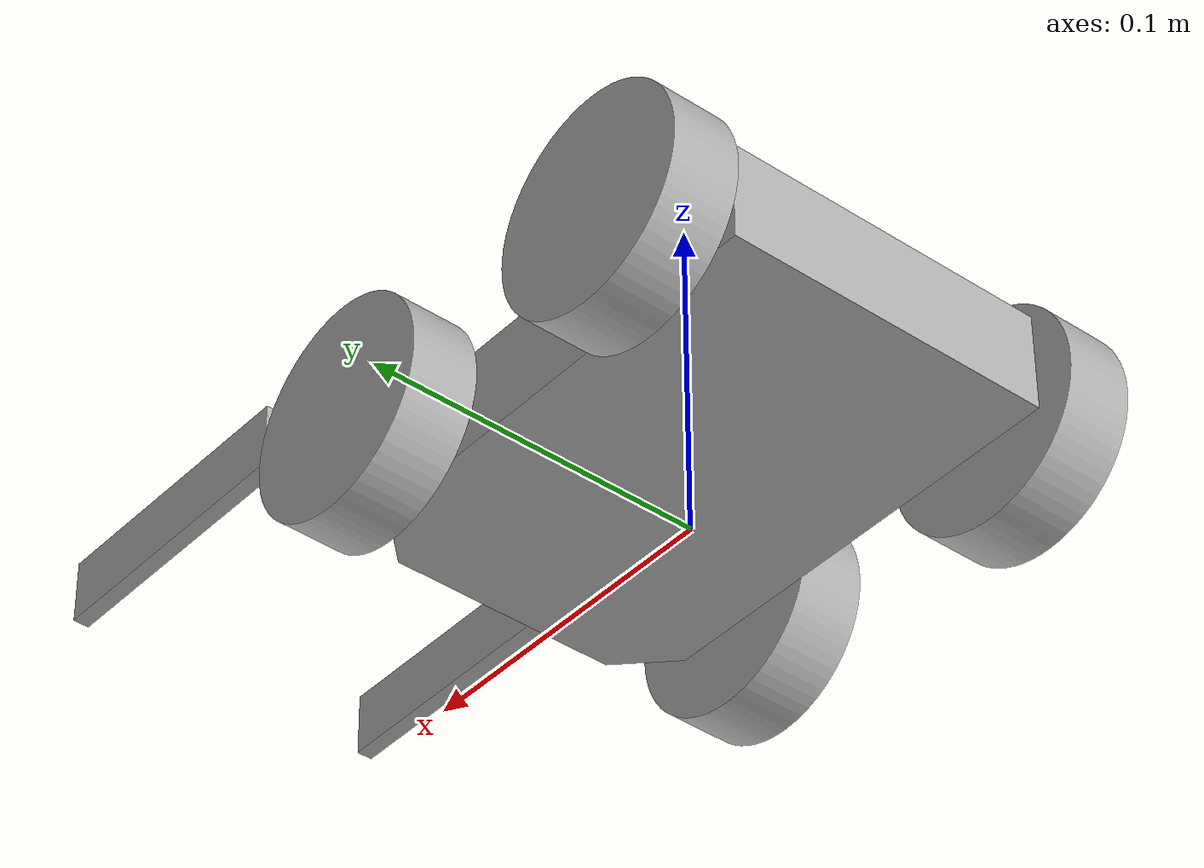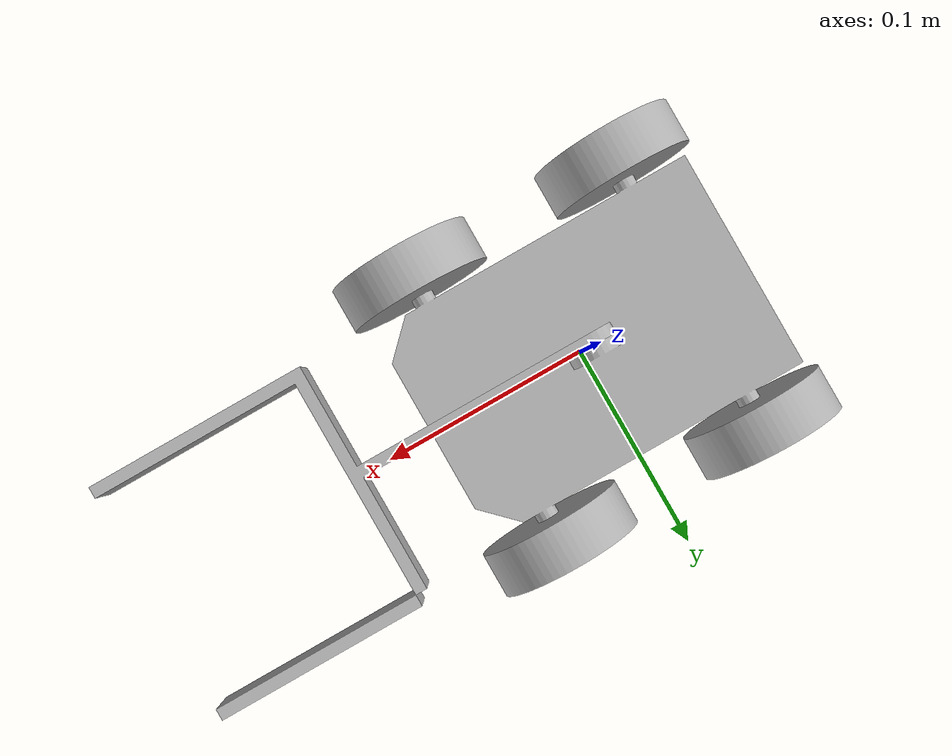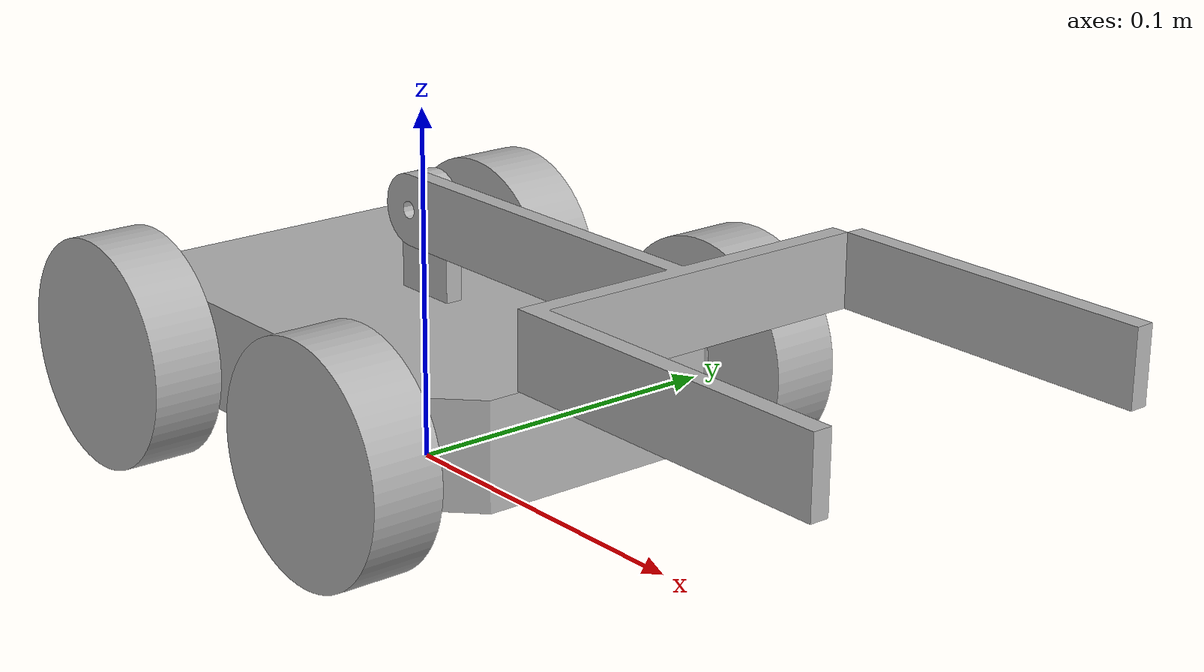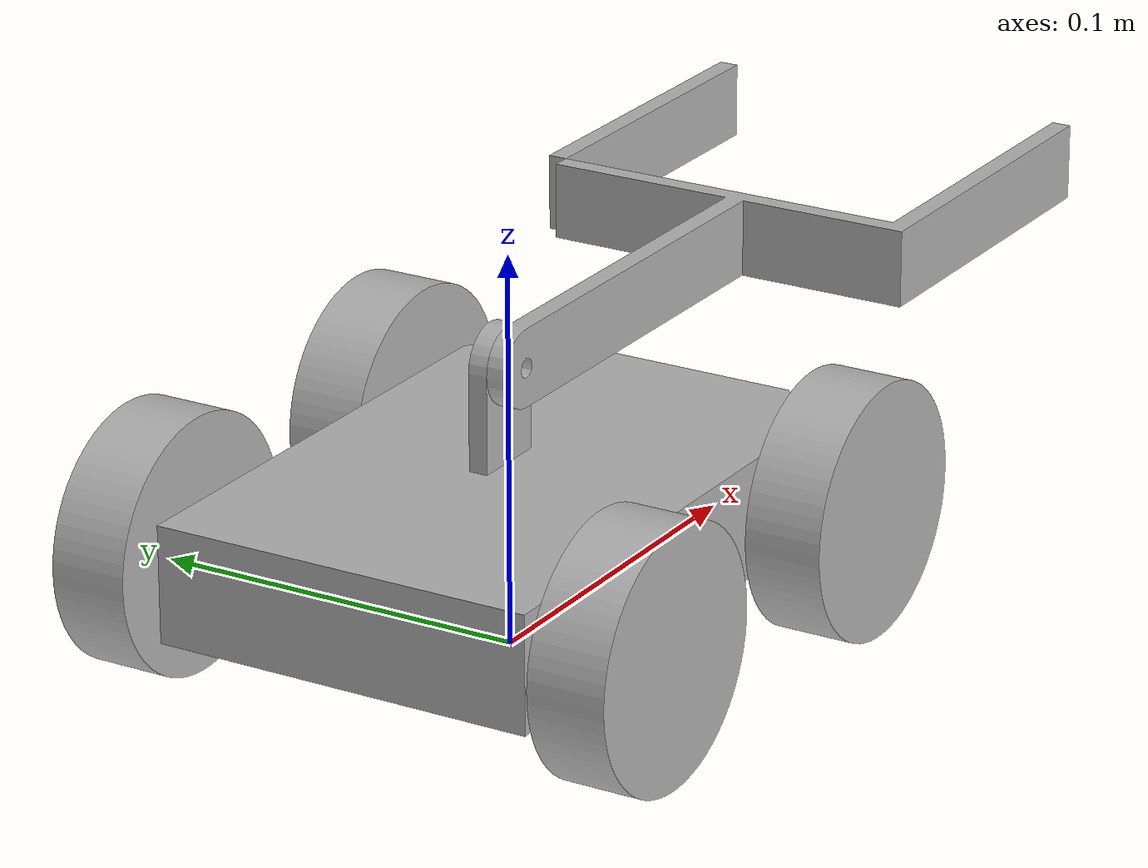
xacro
<?xml version="1.0" ?>
<robot name="demo_model" xmlns:xacro="http://www.ros.org/wiki/xacro">

<xacro:include filename="$(find demo_model_description)/urdf/materials.xacro" />
<xacro:include filename="$(find demo_model_description)/urdf/demo_model.trans" />
<xacro:include filename="$(find demo_model_description)/urdf/demo_model.gazebo" />

<link name="base_link">
  <inertial>
    <origin rpy="0 0 0" xyz="-0.001054668620211629 1.7785526445292643e-05 0.032722255550502254"/>
    <mass value="0.2437163627275536"/>
    <inertia ixx="0.000219" ixy="-0.0" ixz="-0.0" iyy="0.000463" iyz="-0.0" izz="0.000642"/>
  </inertial>
  <visual>
    <origin rpy="0 0 0" xyz="0 0 0"/>
    <geometry>
      <mesh filename="package://demo_model_description/meshes/base_link.stl" scale="0.001 0.001 0.001"/>
    </geometry>
    <material name="silver"/>
  </visual>
  <collision>
    <origin rpy="0 0 0" xyz="0 0 0"/>
    <geometry>
      <mesh filename="package://demo_model_description/meshes/base_link.stl" scale="0.001 0.001 0.001"/>
    </geometry>
  </collision>
</link>

<link name="wheel_rf_1">
  <inertial>
    <origin rpy="0 0 0" xyz="-1.3877787807814457e-17 -0.010000000000000002 0.0"/>
    <mass value="0.061720514670588485"/>
    <inertia ixx="1.8e-05" ixy="0.0" ixz="0.0" iyy="3.3e-05" iyz="0.0" izz="1.8e-05"/>
  </inertial>
  <visual>
    <origin rpy="0 0 0" xyz="-0.05 0.055 -0.0325"/>
    <geometry>
      <mesh filename="package://demo_model_description/meshes/wheel_rf_1.stl" scale="0.001 0.001 0.001"/>
    </geometry>
    <material name="silver"/>
  </visual>
  <collision>
    <origin rpy="0 0 0" xyz="-0.05 0.055 -0.0325"/>
    <geometry>
      <mesh filename="package://demo_model_description/meshes/wheel_rf_1.stl" scale="0.001 0.001 0.001"/>
    </geometry>
  </collision>
</link>

<link name="wheel_rb_1">
  <inertial>
    <origin rpy="0 0 0" xyz="0.0 -0.010000000000000002 0.0"/>
    <mass value="0.061720514670588485"/>
    <inertia ixx="1.8e-05" ixy="-0.0" ixz="-0.0" iyy="3.3e-05" iyz="0.0" izz="1.8e-05"/>
  </inertial>
  <visual>
    <origin rpy="0 0 0" xyz="0.05 0.055 -0.0325"/>
    <geometry>
      <mesh filename="package://demo_model_description/meshes/wheel_rb_1.stl" scale="0.001 0.001 0.001"/>
    </geometry>
    <material name="silver"/>
  </visual>
  <collision>
    <origin rpy="0 0 0" xyz="0.05 0.055 -0.0325"/>
    <geometry>
      <mesh filename="package://demo_model_description/meshes/wheel_rb_1.stl" scale="0.001 0.001 0.001"/>
    </geometry>
  </collision>
</link>

<link name="wheel_lb_1">
  <inertial>
    <origin rpy="0 0 0" xyz="0.0 0.010000000000000002 0.0"/>
    <mass value="0.061720514670588485"/>
    <inertia ixx="1.8e-05" ixy="0.0" ixz="-0.0" iyy="3.3e-05" iyz="0.0" izz="1.8e-05"/>
  </inertial>
  <visual>
    <origin rpy="0 0 0" xyz="0.05 -0.055 -0.0325"/>
    <geometry>
      <mesh filename="package://demo_model_description/meshes/wheel_lb_1.stl" scale="0.001 0.001 0.001"/>
    </geometry>
    <material name="silver"/>
  </visual>
  <collision>
    <origin rpy="0 0 0" xyz="0.05 -0.055 -0.0325"/>
    <geometry>
      <mesh filename="package://demo_model_description/meshes/wheel_lb_1.stl" scale="0.001 0.001 0.001"/>
    </geometry>
  </collision>
</link>

<link name="wheel_lf_1">
  <inertial>
    <origin rpy="0 0 0" xyz="-1.3877787807814457e-17 0.010000000000000002 0.0"/>
    <mass value="0.061720514670588485"/>
    <inertia ixx="1.8e-05" ixy="0.0" ixz="0.0" iyy="3.3e-05" iyz="0.0" izz="1.8e-05"/>
  </inertial>
  <visual>
    <origin rpy="0 0 0" xyz="-0.05 -0.055 -0.0325"/>
    <geometry>
      <mesh filename="package://demo_model_description/meshes/wheel_lf_1.stl" scale="0.001 0.001 0.001"/>
    </geometry>
    <material name="silver"/>
  </visual>
  <collision>
    <origin rpy="0 0 0" xyz="-0.05 -0.055 -0.0325"/>
    <geometry>
      <mesh filename="package://demo_model_description/meshes/wheel_lf_1.stl" scale="0.001 0.001 0.001"/>
    </geometry>
  </collision>
</link>

<link name="arm_1">
  <inertial>
    <origin rpy="0 0 0" xyz="0.09997331080702355 -0.015088107062819853 1.3877787807814457e-17"/>
    <mass value="0.03199845679655116"/>
    <inertia ixx="2.4e-05" ixy="2.3e-05" ixz="-0.0" iyy="8e-05" iyz="-0.0" izz="0.000102"/>
  </inertial>
  <visual>
    <origin rpy="0 0 0" xyz="-0.0 -0.0 -0.0725"/>
    <geometry>
      <mesh filename="package://demo_model_description/meshes/arm_1.stl" scale="0.001 0.001 0.001"/>
    </geometry>
    <material name="silver"/>
  </visual>
  <collision>
    <origin rpy="0 0 0" xyz="-0.0 -0.0 -0.0725"/>
    <geometry>
      <mesh filename="package://demo_model_description/meshes/arm_1.stl" scale="0.001 0.001 0.001"/>
    </geometry>
  </collision>
</link>

<link name="gripper_1">
  <inertial>
    <origin rpy="0 0 0" xyz="0.04499999999999997 0.002500000000000009 -0.009999999999999995"/>
    <mass value="0.009540000000000017"/>
    <inertia ixx="0.0" ixy="0.0" ixz="-0.0" iyy="7e-06" iyz="0.0" izz="6e-06"/>
  </inertial>
  <visual>
    <origin rpy="0 0 0" xyz="-0.11 -0.05 -0.0825"/>
    <geometry>
      <mesh filename="package://demo_model_description/meshes/gripper_1.stl" scale="0.001 0.001 0.001"/>
    </geometry>
    <material name="silver"/>
  </visual>
  <collision>
    <origin rpy="0 0 0" xyz="-0.11 -0.05 -0.0825"/>
    <geometry>
      <mesh filename="package://demo_model_description/meshes/gripper_1.stl" scale="0.001 0.001 0.001"/>
    </geometry>
  </collision>
</link>

<joint name="motor_rf" type="continuous">
  <origin rpy="0 0 0" xyz="0.05 -0.055 0.0325"/>
  <parent link="base_link"/>
  <child link="wheel_rf_1"/>
  <axis xyz="0.0 1.0 0.0"/>
</joint>

<joint name="motor_rb" type="continuous">
  <origin rpy="0 0 0" xyz="-0.05 -0.055 0.0325"/>
  <parent link="base_link"/>
  <child link="wheel_rb_1"/>
  <axis xyz="0.0 1.0 0.0"/>
</joint>

<joint name="motor_lb" type="continuous">
  <origin rpy="0 0 0" xyz="-0.05 0.055 0.0325"/>
  <parent link="base_link"/>
  <child link="wheel_lb_1"/>
  <axis xyz="0.0 1.0 0.0"/>
</joint>

<joint name="motor_lf" type="continuous">
  <origin rpy="0 0 0" xyz="0.05 0.055 0.0325"/>
  <parent link="base_link"/>
  <child link="wheel_lf_1"/>
  <axis xyz="0.0 1.0 0.0"/>
</joint>

<joint name="arm_joint" type="revolute">
  <origin rpy="0 0 0" xyz="0.0 0.0 0.0725"/>
  <parent link="base_link"/>
  <child link="arm_1"/>
  <axis xyz="0.0 -1.0 0.0"/>
  <limit effort="100" lower="-0.174533" upper="1.919862" velocity="100"/>
</joint>

<joint name="gripper_joint" type="revolute">
  <origin rpy="0 0 0" xyz="0.11 0.05 0.01"/>
  <parent link="arm_1"/>
  <child link="gripper_1"/>
  <axis xyz="-0.0 0.0 1.0"/>
  <limit effort="100" lower="-1.570796" upper="1.570796" velocity="100"/>
</joint>

</robot>

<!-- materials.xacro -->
<robot name="demo_model" xmlns:xacro="http://www.ros.org/wiki/xacro" >

<material name="silver">
  <color rgba="0.700 0.700 0.700 1.000"/>
</material>

</robot>

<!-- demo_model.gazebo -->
<robot name="demo_model" xmlns:xacro="http://www.ros.org/wiki/xacro" >

<xacro:property name="body_color" value="Gazebo/Orange" />
<xacro:property name="wheel_color" value="Gazebo/Black" />
<xacro:property name="arm_color" value="Gazebo/Blue" />

<gazebo>
  <plugin filename="libgazebo_ros_control.so" name="gazebo_ros_control">
    <robotNamespace>/demo_model</robotNamespace>
    <robotSimType>gazebo_ros_control/DefaultRobotHWSim</robotSimType>
    <legacyModeNS>true</legacyModeNS>
  </plugin>
</gazebo>

<gazebo reference="base_link">
  <material>${body_color}</material>
  <mu1>0.2</mu1>
  <mu2>0.2</mu2>
  <selfCollide>true</selfCollide>
  <gravity>true</gravity>
</gazebo>

<gazebo reference="wheel_rf_1">
  <material>${wheel_color}</material>
  <mu1>10.0</mu1>
  <mu2>10.0</mu2>
  <selfCollide>true</selfCollide>
</gazebo>

<gazebo reference="wheel_rb_1">
  <material>${wheel_color}</material>
  <mu1>10.0</mu1>
  <mu2>10.0</mu2>
  <selfCollide>true</selfCollide>
</gazebo>

<gazebo reference="wheel_lb_1">
  <material>${wheel_color}</material>
  <mu1>10.0</mu1>
  <mu2>10.0</mu2>
  <selfCollide>true</selfCollide>
</gazebo>

<gazebo reference="wheel_lf_1">
  <material>${wheel_color}</material>
  <mu1>10.0</mu1>
  <mu2>10.0</mu2>
  <selfCollide>true</selfCollide>
</gazebo>

<gazebo reference="arm_1">
  <material>${arm_color}</material>
  <mu1>100.0</mu1>
  <mu2>100.0</mu2>
  <selfCollide>true</selfCollide>
</gazebo>

<gazebo reference="gripper_1">
  <material>${arm_color}</material>
  <mu1>100.0</mu1>
  <mu2>100.0</mu2>
  <selfCollide>true</selfCollide>
</gazebo>

<gazebo>
  <plugin name="skid_steer_drive_controller" filename="libgazebo_ros_skid_steer_drive.so">
    <updateRate>100.0</updateRate>
    <robotNamespace>/</robotNamespace>
    <leftFrontJoint>motor_lf</leftFrontJoint>
    <rightFrontJoint>motor_rf</rightFrontJoint>
    <leftRearJoint>motor_lb</leftRearJoint>
    <rightRearJoint>motor_rb</rightRearJoint>
    <wheelSeparation>0.15</wheelSeparation>
    <wheelDiameter>0.065</wheelDiameter>
    <robotBaseFrame>base_link</robotBaseFrame>
    <torque>20</torque>
    <topicName>/cmd_vel</topicName>
    <broadcastTF>false</broadcastTF>
  </plugin>
</gazebo>

</robot>
